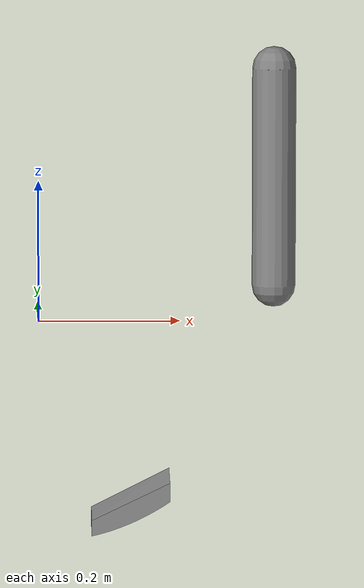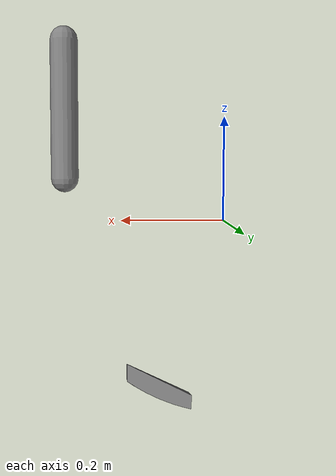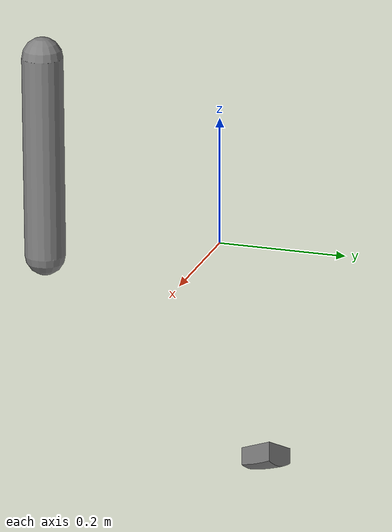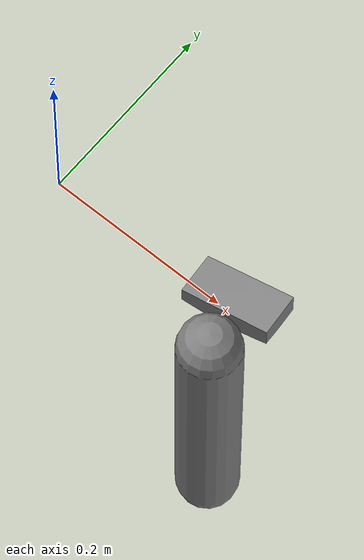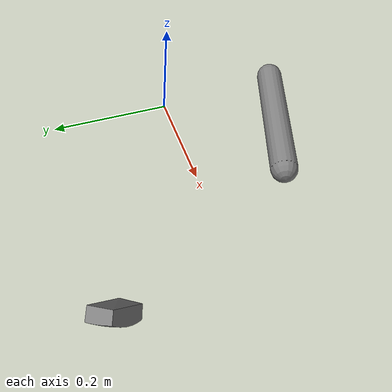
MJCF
<mujoco model="bug">
  <asset>
      <mesh name="bug_mesh" file="bug_mesh.obj"/>
  </asset>
  <worldbody>
    <body name="body11" pos="0 0 0.7">
      <joint name="joint11" type="free"/>
      <inertial mass="1" pos="0 0 0" fullinertia="1 1 1 0 0 0"/>
      <body name="body12" pos="0.29785 -0.055 0">
        <inertial pos="0 0 0" mass="1" fullinertia="1 1 1 0 0 0"/>
        <joint name="joint12" pos="0 0 0" axis="1 0 0" range="-0.785398 0.785398"/>
        <body name="body13" pos="0 -0.110945 0">
          <inertial pos="0 0 0" mass="1" fullinertia="1 1 1 0 0 0"/>
          <joint name="joint13"  pos="0 0 0" axis="0 1 0" range="-0.898845 2.295108"/>
          <body name="body14" pos="0.025 0 -0.3205">
            <inertial pos="0 0 0" mass="1" fullinertia="1 1 1 0 0 0"/>
            <joint name="joint14"  pos="0 0 0" axis="0 1 0" range="-2.7929 -0.2471"/>
            <geom name="collision1"   type="capsule" size="0.03 0.15" pos="0 0 -0.155"/>
          </body>
        </body>
      </body>
    </body>

    <body name="body2">
        <joint name="joint2" type="free"/>
        <geom name="collision2" type="mesh" mesh="bug_mesh"/>
    </body>
  </worldbody>
</mujoco>
